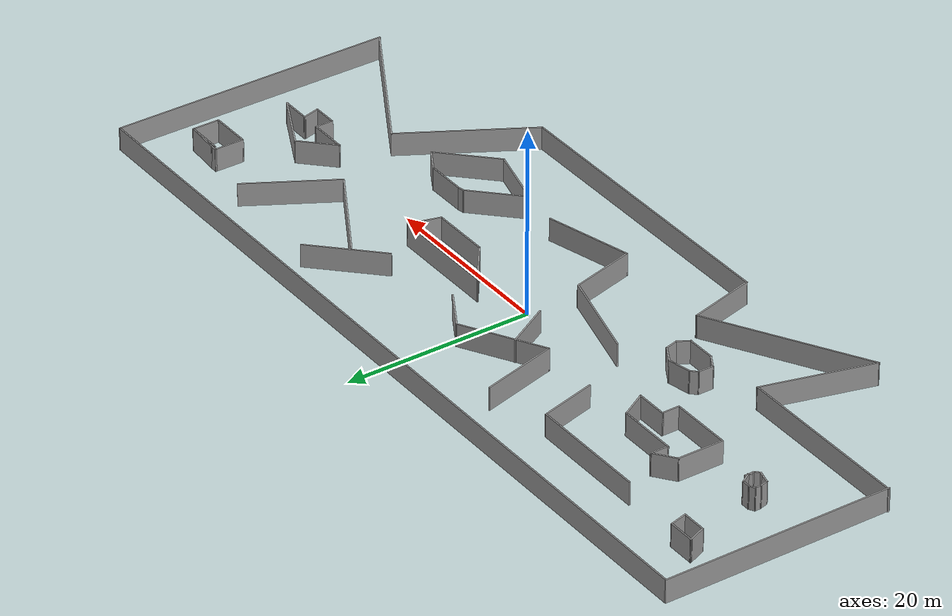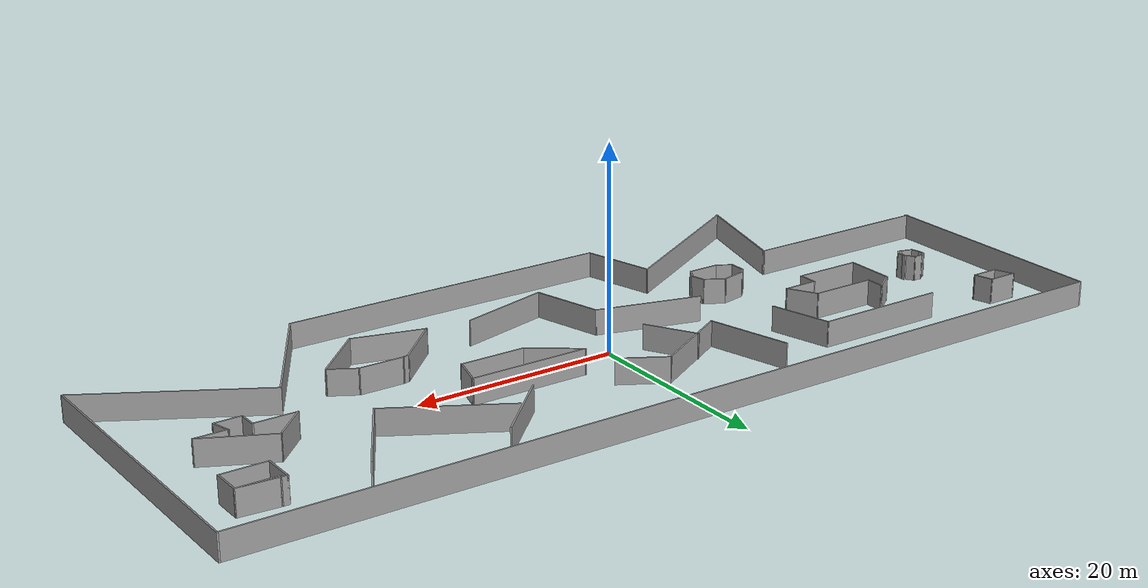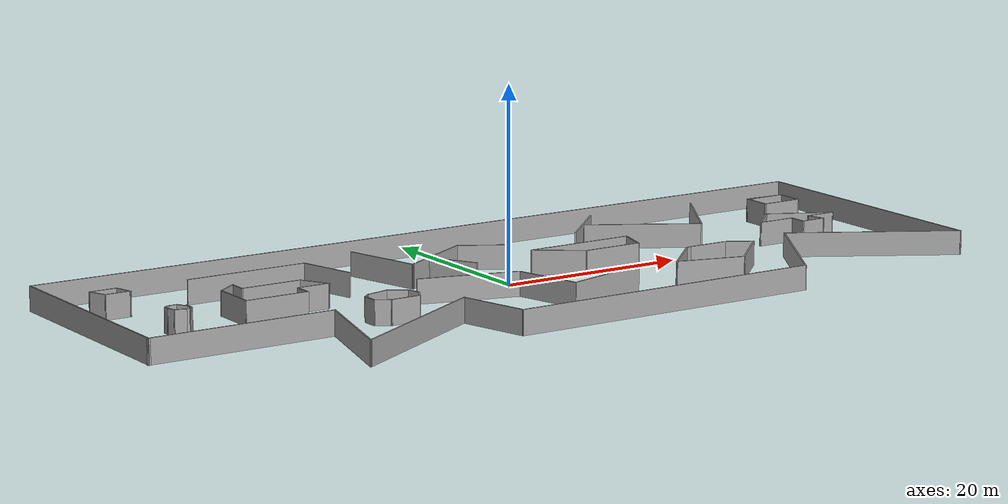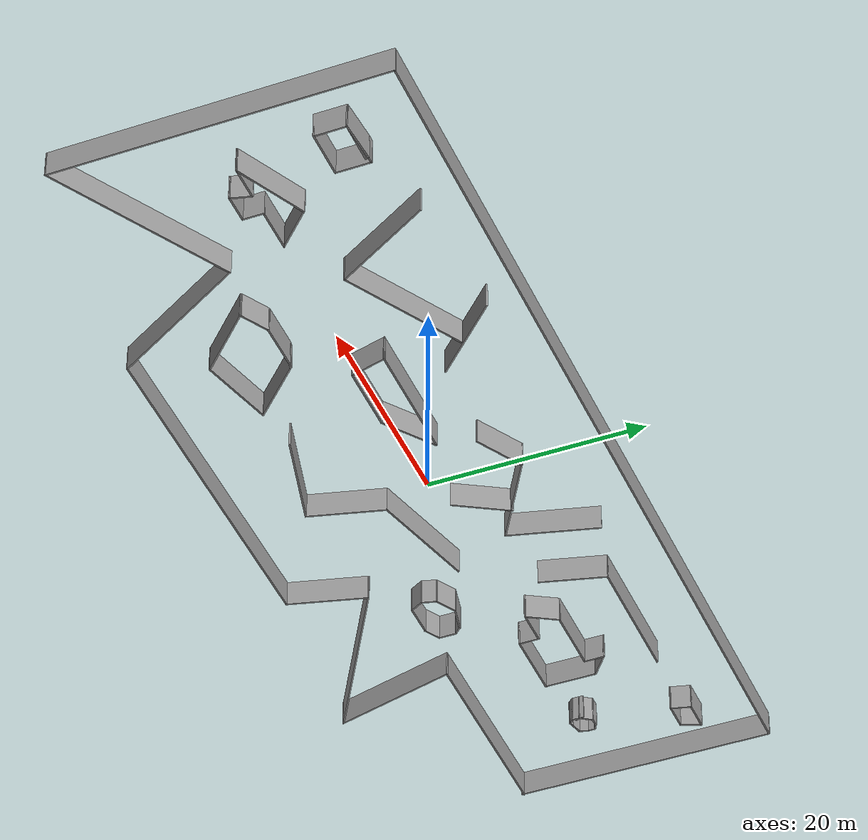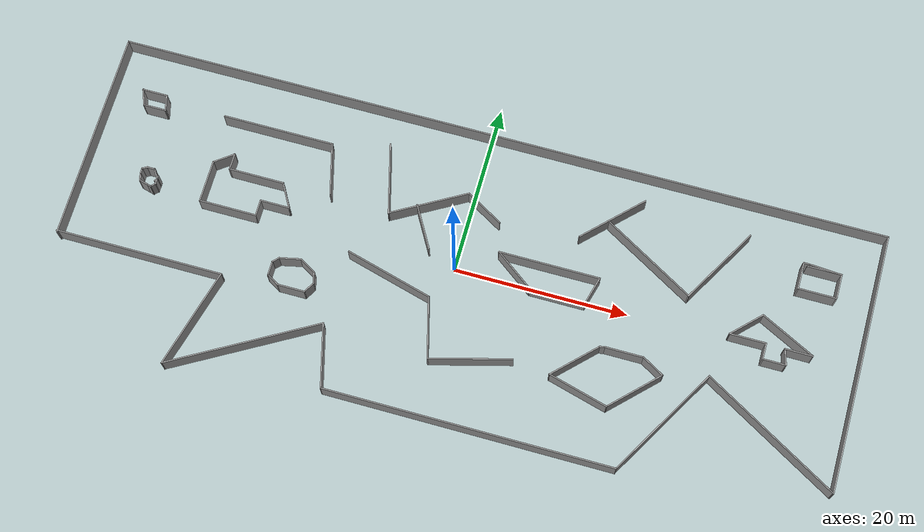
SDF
<?xml version='1.0'?>
<sdf version='1.7'>
  <model name='custommap2'>
    <pose>0.995293 -1.8674 0 0 -0 0</pose>
    <link name='Wall_0'>
      <collision name='Wall_0_Collision'>
        <geometry>
          <box>
            <size>24.5 0.15 2.5</size>
          </box>
        </geometry>
        <pose>0 0 1.25 0 -0 0</pose>
      </collision>
      <visual name='Wall_0_Visual'>
        <pose>0 0 1.25 0 -0 0</pose>
        <geometry>
          <box>
            <size>24.5 0.15 2.5</size>
          </box>
        </geometry>
        <material>
          <script>
            <uri>file://media/materials/scripts/gazebo.material</uri>
            <name>Gazebo/Grey</name>
          </script>
          <ambient>1 1 1 1</ambient>
        </material>
        <meta>
          <layer>0</layer>
        </meta>
      </visual>
      <pose>-44.896 5.66093 0 0 -0 1.5708</pose>
    </link>
    <link name='Wall_1'>
      <collision name='Wall_1_Collision'>
        <geometry>
          <box>
            <size>90 0.15 2.5</size>
          </box>
        </geometry>
        <pose>0 0 1.25 0 -0 0</pose>
      </collision>
      <visual name='Wall_1_Visual'>
        <pose>0 0 1.25 0 -0 0</pose>
        <geometry>
          <box>
            <size>90 0.15 2.5</size>
          </box>
        </geometry>
        <material>
          <script>
            <uri>file://media/materials/scripts/gazebo.material</uri>
            <name>Gazebo/Grey</name>
          </script>
          <ambient>1 1 1 1</ambient>
        </material>
        <meta>
          <layer>0</layer>
        </meta>
      </visual>
      <pose>0.02899 17.8359 0 0 -0 0</pose>
    </link>
    <link name='Wall_11'>
      <collision name='Wall_11_Collision'>
        <geometry>
          <box>
            <size>3 0.15 2.5</size>
          </box>
        </geometry>
        <pose>0 0 1.25 0 -0 0</pose>
      </collision>
      <visual name='Wall_11_Visual'>
        <pose>0 0 1.25 0 -0 0</pose>
        <geometry>
          <box>
            <size>3 0.15 2.5</size>
          </box>
        </geometry>
        <material>
          <script>
            <uri>file://media/materials/scripts/gazebo.material</uri>
            <name>Gazebo/Grey</name>
          </script>
          <ambient>1 1 1 1</ambient>
        </material>
        <meta>
          <layer>0</layer>
        </meta>
      </visual>
      <pose>-39.8624 12.5196 0 0 -0 0</pose>
    </link>
    <link name='Wall_12'>
      <collision name='Wall_12_Collision'>
        <geometry>
          <box>
            <size>2 0.15 2.5</size>
          </box>
        </geometry>
        <pose>0 0 1.25 0 -0 0</pose>
      </collision>
      <visual name='Wall_12_Visual'>
        <pose>0 0 1.25 0 -0 0</pose>
        <geometry>
          <box>
            <size>2 0.15 2.5</size>
          </box>
        </geometry>
        <material>
          <script>
            <uri>file://media/materials/scripts/gazebo.material</uri>
            <name>Gazebo/Grey</name>
          </script>
          <ambient>1 1 1 1</ambient>
        </material>
        <meta>
          <layer>0</layer>
        </meta>
      </visual>
      <pose>-38.198 11.6261 0 0 -0 -1.309</pose>
    </link>
    <link name='Wall_13'>
      <collision name='Wall_13_Collision'>
        <geometry>
          <box>
            <size>2.75 0.15 2.5</size>
          </box>
        </geometry>
        <pose>0 0 1.25 0 -0 0</pose>
      </collision>
      <visual name='Wall_13_Visual'>
        <pose>0 0 1.25 0 -0 0</pose>
        <geometry>
          <box>
            <size>2.75 0.15 2.5</size>
          </box>
        </geometry>
        <material>
          <script>
            <uri>file://media/materials/scripts/gazebo.material</uri>
            <name>Gazebo/Grey</name>
          </script>
          <ambient>1 1 1 1</ambient>
        </material>
        <meta>
          <layer>0</layer>
        </meta>
      </visual>
      <pose>-39.2586 10.7326 0 0 -0 3.14159</pose>
    </link>
    <link name='Wall_14'>
      <collision name='Wall_14_Collision'>
        <geometry>
          <box>
            <size>2.07987 0.15 2.5</size>
          </box>
        </geometry>
        <pose>0 0 1.25 0 -0 0</pose>
      </collision>
      <visual name='Wall_14_Visual'>
        <pose>0 0 1.25 0 -0 0</pose>
        <geometry>
          <box>
            <size>2.07987 0.15 2.5</size>
          </box>
        </geometry>
        <material>
          <script>
            <uri>file://media/materials/scripts/gazebo.material</uri>
            <name>Gazebo/Grey</name>
          </script>
          <ambient>1 1 1 1</ambient>
        </material>
        <meta>
          <layer>0</layer>
        </meta>
      </visual>
      <pose>-40.923 11.6261 0 0 -0 1.95805</pose>
    </link>
    <link name='Wall_16'>
      <collision name='Wall_16_Collision'>
        <geometry>
          <box>
            <size>5 0.15 2.5</size>
          </box>
        </geometry>
        <pose>0 0 1.25 0 -0 0</pose>
      </collision>
      <visual name='Wall_16_Visual'>
        <pose>0 0 1.25 0 -0 0</pose>
        <geometry>
          <box>
            <size>5 0.15 2.5</size>
          </box>
        </geometry>
        <material>
          <script>
            <uri>file://media/materials/scripts/gazebo.material</uri>
            <name>Gazebo/Grey</name>
          </script>
          <ambient>1 1 1 1</ambient>
        </material>
        <meta>
          <layer>0</layer>
        </meta>
      </visual>
      <pose>-30.6738 3.72645 0 0 -0 -1.5708</pose>
    </link>
    <link name='Wall_17'>
      <collision name='Wall_17_Collision'>
        <geometry>
          <box>
            <size>6.75 0.15 2.5</size>
          </box>
        </geometry>
        <pose>0 0 1.25 0 -0 0</pose>
      </collision>
      <visual name='Wall_17_Visual'>
        <pose>0 0 1.25 0 -0 0</pose>
        <geometry>
          <box>
            <size>6.75 0.15 2.5</size>
          </box>
        </geometry>
        <material>
          <script>
            <uri>file://media/materials/scripts/gazebo.material</uri>
            <name>Gazebo/Grey</name>
          </script>
          <ambient>1 1 1 1</ambient>
        </material>
        <meta>
          <layer>0</layer>
        </meta>
      </visual>
      <pose>-27.3738 1.30145 0 0 -0 0</pose>
    </link>
    <link name='Wall_18'>
      <collision name='Wall_18_Collision'>
        <geometry>
          <box>
            <size>2 0.15 2.5</size>
          </box>
        </geometry>
        <pose>0 0 1.25 0 -0 0</pose>
      </collision>
      <visual name='Wall_18_Visual'>
        <pose>0 0 1.25 0 -0 0</pose>
        <geometry>
          <box>
            <size>2 0.15 2.5</size>
          </box>
        </geometry>
        <material>
          <script>
            <uri>file://media/materials/scripts/gazebo.material</uri>
            <name>Gazebo/Grey</name>
          </script>
          <ambient>1 1 1 1</ambient>
        </material>
        <meta>
          <layer>0</layer>
        </meta>
      </visual>
      <pose>-24.0738 2.22645 0 0 -0 1.5708</pose>
    </link>
    <link name='Wall_19'>
      <collision name='Wall_19_Collision'>
        <geometry>
          <box>
            <size>3.5 0.15 2.5</size>
          </box>
        </geometry>
        <pose>0 0 1.25 0 -0 0</pose>
      </collision>
      <visual name='Wall_19_Visual'>
        <pose>0 0 1.25 0 -0 0</pose>
        <geometry>
          <box>
            <size>3.5 0.15 2.5</size>
          </box>
        </geometry>
        <material>
          <script>
            <uri>file://media/materials/scripts/gazebo.material</uri>
            <name>Gazebo/Grey</name>
          </script>
          <ambient>1 1 1 1</ambient>
        </material>
        <meta>
          <layer>0</layer>
        </meta>
      </visual>
      <pose>-22.3988 3.15145 0 0 -0 0</pose>
    </link>
    <link name='Wall_2'>
      <collision name='Wall_2_Collision'>
        <geometry>
          <box>
            <size>30.25 0.15 2.5</size>
          </box>
        </geometry>
        <pose>0 0 1.25 0 -0 0</pose>
      </collision>
      <visual name='Wall_2_Visual'>
        <pose>0 0 1.25 0 -0 0</pose>
        <geometry>
          <box>
            <size>30.25 0.15 2.5</size>
          </box>
        </geometry>
        <material>
          <script>
            <uri>file://media/materials/scripts/gazebo.material</uri>
            <name>Gazebo/Grey</name>
          </script>
          <ambient>1 1 1 1</ambient>
        </material>
        <meta>
          <layer>0</layer>
        </meta>
      </visual>
      <pose>44.954 2.78593 0 0 -0 -1.5708</pose>
    </link>
    <link name='Wall_20'>
      <collision name='Wall_20_Collision'>
        <geometry>
          <box>
            <size>3.25 0.15 2.5</size>
          </box>
        </geometry>
        <pose>0 0 1.25 0 -0 0</pose>
      </collision>
      <visual name='Wall_20_Visual'>
        <pose>0 0 1.25 0 -0 0</pose>
        <geometry>
          <box>
            <size>3.25 0.15 2.5</size>
          </box>
        </geometry>
        <material>
          <script>
            <uri>file://media/materials/scripts/gazebo.material</uri>
            <name>Gazebo/Grey</name>
          </script>
          <ambient>1 1 1 1</ambient>
        </material>
        <meta>
          <layer>0</layer>
        </meta>
      </visual>
      <pose>-21.4988 4.49379 0 0 -0 2.0944</pose>
    </link>
    <link name='Wall_21'>
      <collision name='Wall_21_Collision'>
        <geometry>
          <box>
            <size>6.5 0.15 2.5</size>
          </box>
        </geometry>
        <pose>0 0 1.25 0 -0 0</pose>
      </collision>
      <visual name='Wall_21_Visual'>
        <pose>0 0 1.25 0 -0 0</pose>
        <geometry>
          <box>
            <size>6.5 0.15 2.5</size>
          </box>
        </geometry>
        <material>
          <script>
            <uri>file://media/materials/scripts/gazebo.material</uri>
            <name>Gazebo/Grey</name>
          </script>
          <ambient>1 1 1 1</ambient>
        </material>
        <meta>
          <layer>0</layer>
        </meta>
      </visual>
      <pose>-25.4488 5.83613 0 0 -0 3.14159</pose>
    </link>
    <link name='Wall_22'>
      <collision name='Wall_22_Collision'>
        <geometry>
          <box>
            <size>2 0.15 2.5</size>
          </box>
        </geometry>
        <pose>0 0 1.25 0 -0 0</pose>
      </collision>
      <visual name='Wall_22_Visual'>
        <pose>0 0 1.25 0 -0 0</pose>
        <geometry>
          <box>
            <size>2 0.15 2.5</size>
          </box>
        </geometry>
        <material>
          <script>
            <uri>file://media/materials/scripts/gazebo.material</uri>
            <name>Gazebo/Grey</name>
          </script>
          <ambient>1 1 1 1</ambient>
        </material>
        <meta>
          <layer>0</layer>
        </meta>
      </visual>
      <pose>-28.6238 6.76112 0 0 -0 1.5708</pose>
    </link>
    <link name='Wall_23'>
      <collision name='Wall_23_Collision'>
        <geometry>
          <box>
            <size>2.71081 0.15 2.5</size>
          </box>
        </geometry>
        <pose>0 0 1.25 0 -0 0</pose>
      </collision>
      <visual name='Wall_23_Visual'>
        <pose>0 0 1.25 0 -0 0</pose>
        <geometry>
          <box>
            <size>2.71081 0.15 2.5</size>
          </box>
        </geometry>
        <material>
          <script>
            <uri>file://media/materials/scripts/gazebo.material</uri>
            <name>Gazebo/Grey</name>
          </script>
          <ambient>1 1 1 1</ambient>
        </material>
        <meta>
          <layer>0</layer>
        </meta>
      </visual>
      <pose>-29.6488 6.91879 0 0 -0 -2.49897</pose>
    </link>
    <link name='Wall_25'>
      <collision name='Wall_25_Collision'>
        <geometry>
          <box>
            <size>13 0.15 2.5</size>
          </box>
        </geometry>
        <pose>0 0 1.25 0 -0 0</pose>
      </collision>
      <visual name='Wall_25_Visual'>
        <pose>0 0 1.25 0 -0 0</pose>
        <geometry>
          <box>
            <size>13 0.15 2.5</size>
          </box>
        </geometry>
        <material>
          <script>
            <uri>file://media/materials/scripts/gazebo.material</uri>
            <name>Gazebo/Grey</name>
          </script>
          <ambient>1 1 1 1</ambient>
        </material>
        <meta>
          <layer>0</layer>
        </meta>
      </visual>
      <pose>-24.7441 11.8828 0 0 -0 0</pose>
    </link>
    <link name='Wall_26'>
      <collision name='Wall_26_Collision'>
        <geometry>
          <box>
            <size>6.25 0.15 2.5</size>
          </box>
        </geometry>
        <pose>0 0 1.25 0 -0 0</pose>
      </collision>
      <visual name='Wall_26_Visual'>
        <pose>0 0 1.25 0 -0 0</pose>
        <geometry>
          <box>
            <size>6.25 0.15 2.5</size>
          </box>
        </geometry>
        <material>
          <script>
            <uri>file://media/materials/scripts/gazebo.material</uri>
            <name>Gazebo/Grey</name>
          </script>
          <ambient>1 1 1 1</ambient>
        </material>
        <meta>
          <layer>0</layer>
        </meta>
      </visual>
      <pose>-17.5297 8.9367 0 0 -0 -1.309</pose>
    </link>
    <link name='Wall_28'>
      <collision name='Wall_28_Collision'>
        <geometry>
          <box>
            <size>1 0.15 2.5</size>
          </box>
        </geometry>
        <pose>0 0 1.25 0 -0 0</pose>
      </collision>
      <visual name='Wall_28_Visual'>
        <pose>0 0 1.25 0 -0 0</pose>
        <geometry>
          <box>
            <size>1 0.15 2.5</size>
          </box>
        </geometry>
        <material>
          <script>
            <uri>file://media/materials/scripts/gazebo.material</uri>
            <name>Gazebo/Grey</name>
          </script>
          <ambient>1 1 1 1</ambient>
        </material>
        <meta>
          <layer>0</layer>
        </meta>
      </visual>
      <pose>-20.29 -3.13522 0 0 -0 -2.35619</pose>
    </link>
    <link name='Wall_29'>
      <collision name='Wall_29_Collision'>
        <geometry>
          <box>
            <size>1.75 0.15 2.5</size>
          </box>
        </geometry>
        <pose>0 0 1.25 0 -0 0</pose>
      </collision>
      <visual name='Wall_29_Visual'>
        <pose>0 0 1.25 0 -0 0</pose>
        <geometry>
          <box>
            <size>1.75 0.15 2.5</size>
          </box>
        </geometry>
        <material>
          <script>
            <uri>file://media/materials/scripts/gazebo.material</uri>
            <name>Gazebo/Grey</name>
          </script>
          <ambient>1 1 1 1</ambient>
        </material>
        <meta>
          <layer>0</layer>
        </meta>
      </visual>
      <pose>-20.5906 -4.23574 0 0 -0 -1.5708</pose>
    </link>
    <link name='Wall_3'>
      <collision name='Wall_3_Collision'>
        <geometry>
          <box>
            <size>18.25 0.15 2.5</size>
          </box>
        </geometry>
        <pose>0 0 1.25 0 -0 0</pose>
      </collision>
      <visual name='Wall_3_Visual'>
        <pose>0 0 1.25 0 -0 0</pose>
        <geometry>
          <box>
            <size>18.25 0.15 2.5</size>
          </box>
        </geometry>
        <material>
          <script>
            <uri>file://media/materials/scripts/gazebo.material</uri>
            <name>Gazebo/Grey</name>
          </script>
          <ambient>1 1 1 1</ambient>
        </material>
        <meta>
          <layer>0</layer>
        </meta>
      </visual>
      <pose>37.1165 -7.73907 0 0 -0 2.61799</pose>
    </link>
    <link name='Wall_30'>
      <collision name='Wall_30_Collision'>
        <geometry>
          <box>
            <size>1.75 0.15 2.5</size>
          </box>
        </geometry>
        <pose>0 0 1.25 0 -0 0</pose>
      </collision>
      <visual name='Wall_30_Visual'>
        <pose>0 0 1.25 0 -0 0</pose>
        <geometry>
          <box>
            <size>1.75 0.15 2.5</size>
          </box>
        </geometry>
        <material>
          <script>
            <uri>file://media/materials/scripts/gazebo.material</uri>
            <name>Gazebo/Grey</name>
          </script>
          <ambient>1 1 1 1</ambient>
        </material>
        <meta>
          <layer>0</layer>
        </meta>
      </visual>
      <pose>-19.8977 -5.43574 0 0 -0 -0.523599</pose>
    </link>
    <link name='Wall_31'>
      <collision name='Wall_31_Collision'>
        <geometry>
          <box>
            <size>3.25 0.15 2.5</size>
          </box>
        </geometry>
        <pose>0 0 1.25 0 -0 0</pose>
      </collision>
      <visual name='Wall_31_Visual'>
        <pose>0 0 1.25 0 -0 0</pose>
        <geometry>
          <box>
            <size>3.25 0.15 2.5</size>
          </box>
        </geometry>
        <material>
          <script>
            <uri>file://media/materials/scripts/gazebo.material</uri>
            <name>Gazebo/Grey</name>
          </script>
          <ambient>1 1 1 1</ambient>
        </material>
        <meta>
          <layer>0</layer>
        </meta>
      </visual>
      <pose>-17.6549 -5.83574 0 0 -0 0</pose>
    </link>
    <link name='Wall_32'>
      <collision name='Wall_32_Collision'>
        <geometry>
          <box>
            <size>1.5 0.15 2.5</size>
          </box>
        </geometry>
        <pose>0 0 1.25 0 -0 0</pose>
      </collision>
      <visual name='Wall_32_Visual'>
        <pose>0 0 1.25 0 -0 0</pose>
        <geometry>
          <box>
            <size>1.5 0.15 2.5</size>
          </box>
        </geometry>
        <material>
          <script>
            <uri>file://media/materials/scripts/gazebo.material</uri>
            <name>Gazebo/Grey</name>
          </script>
          <ambient>1 1 1 1</ambient>
        </material>
        <meta>
          <layer>0</layer>
        </meta>
      </visual>
      <pose>-15.7674 -5.25117 0 0 -0 1.0472</pose>
    </link>
    <link name='Wall_33'>
      <collision name='Wall_33_Collision'>
        <geometry>
          <box>
            <size>1.5 0.15 2.5</size>
          </box>
        </geometry>
        <pose>0 0 1.25 0 -0 0</pose>
      </collision>
      <visual name='Wall_33_Visual'>
        <pose>0 0 1.25 0 -0 0</pose>
        <geometry>
          <box>
            <size>1.5 0.15 2.5</size>
          </box>
        </geometry>
        <material>
          <script>
            <uri>file://media/materials/scripts/gazebo.material</uri>
            <name>Gazebo/Grey</name>
          </script>
          <ambient>1 1 1 1</ambient>
        </material>
        <meta>
          <layer>0</layer>
        </meta>
      </visual>
      <pose>-15.6046 -4.01461 0 0 -0 1.8326</pose>
    </link>
    <link name='Wall_34'>
      <collision name='Wall_34_Collision'>
        <geometry>
          <box>
            <size>2.25 0.15 2.5</size>
          </box>
        </geometry>
        <pose>0 0 1.25 0 -0 0</pose>
      </collision>
      <visual name='Wall_34_Visual'>
        <pose>0 0 1.25 0 -0 0</pose>
        <geometry>
          <box>
            <size>2.25 0.15 2.5</size>
          </box>
        </geometry>
        <material>
          <script>
            <uri>file://media/materials/scripts/gazebo.material</uri>
            <name>Gazebo/Grey</name>
          </script>
          <ambient>1 1 1 1</ambient>
        </material>
        <meta>
          <layer>0</layer>
        </meta>
      </visual>
      <pose>-16.6887 -2.83761 0 0 -0 2.61799</pose>
    </link>
    <link name='Wall_35'>
      <collision name='Wall_35_Collision'>
        <geometry>
          <box>
            <size>2.59787 0.15 2.5</size>
          </box>
        </geometry>
        <pose>0 0 1.25 0 -0 0</pose>
      </collision>
      <visual name='Wall_35_Visual'>
        <pose>0 0 1.25 0 -0 0</pose>
        <geometry>
          <box>
            <size>2.59787 0.15 2.5</size>
          </box>
        </geometry>
        <material>
          <script>
            <uri>file://media/materials/scripts/gazebo.material</uri>
            <name>Gazebo/Grey</name>
          </script>
          <ambient>1 1 1 1</ambient>
        </material>
        <meta>
          <layer>0</layer>
        </meta>
      </visual>
      <pose>-18.7938 -2.57365 0 0 -0 -2.92666</pose>
    </link>
    <link name='Wall_37'>
      <collision name='Wall_37_Collision'>
        <geometry>
          <box>
            <size>10.5 0.15 2.5</size>
          </box>
        </geometry>
        <pose>0 0 1.25 0 -0 0</pose>
      </collision>
      <visual name='Wall_37_Visual'>
        <pose>0 0 1.25 0 -0 0</pose>
        <geometry>
          <box>
            <size>10.5 0.15 2.5</size>
          </box>
        </geometry>
        <material>
          <script>
            <uri>file://media/materials/scripts/gazebo.material</uri>
            <name>Gazebo/Grey</name>
          </script>
          <ambient>1 1 1 1</ambient>
        </material>
        <meta>
          <layer>0</layer>
        </meta>
      </visual>
      <pose>-7.70288 -1.34381 0 0 -0 -0.261799</pose>
    </link>
    <link name='Wall_38'>
      <collision name='Wall_38_Collision'>
        <geometry>
          <box>
            <size>7.25 0.15 2.5</size>
          </box>
        </geometry>
        <pose>0 0 1.25 0 -0 0</pose>
      </collision>
      <visual name='Wall_38_Visual'>
        <pose>0 0 1.25 0 -0 0</pose>
        <geometry>
          <box>
            <size>7.25 0.15 2.5</size>
          </box>
        </geometry>
        <material>
          <script>
            <uri>file://media/materials/scripts/gazebo.material</uri>
            <name>Gazebo/Grey</name>
          </script>
          <ambient>1 1 1 1</ambient>
        </material>
        <meta>
          <layer>0</layer>
        </meta>
      </visual>
      <pose>-1.78541 -6.11223 0 0 -0 -1.309</pose>
    </link>
    <link name='Wall_39'>
      <collision name='Wall_39_Collision'>
        <geometry>
          <box>
            <size>9.5 0.15 2.5</size>
          </box>
        </geometry>
        <pose>0 0 1.25 0 -0 0</pose>
      </collision>
      <visual name='Wall_39_Visual'>
        <pose>0 0 1.25 0 -0 0</pose>
        <geometry>
          <box>
            <size>9.5 0.15 2.5</size>
          </box>
        </geometry>
        <material>
          <script>
            <uri>file://media/materials/scripts/gazebo.material</uri>
            <name>Gazebo/Grey</name>
          </script>
          <ambient>1 1 1 1</ambient>
        </material>
        <meta>
          <layer>0</layer>
        </meta>
      </visual>
      <pose>3.6491 -8.33129 0 0 -0 0.261799</pose>
    </link>
    <link name='Wall_4'>
      <collision name='Wall_4_Collision'>
        <geometry>
          <box>
            <size>14.75 0.15 2.5</size>
          </box>
        </geometry>
        <pose>0 0 1.25 0 -0 0</pose>
      </collision>
      <visual name='Wall_4_Visual'>
        <pose>0 0 1.25 0 -0 0</pose>
        <geometry>
          <box>
            <size>14.75 0.15 2.5</size>
          </box>
        </geometry>
        <material>
          <script>
            <uri>file://media/materials/scripts/gazebo.material</uri>
            <name>Gazebo/Grey</name>
          </script>
          <ambient>1 1 1 1</ambient>
        </material>
        <meta>
          <layer>0</layer>
        </meta>
      </visual>
      <pose>25.6289 -9.53605 0 0 -0 -2.0944</pose>
    </link>
    <link name='Wall_41'>
      <collision name='Wall_41_Collision'>
        <geometry>
          <box>
            <size>8.5 0.15 2.5</size>
          </box>
        </geometry>
        <pose>0 0 1.25 0 -0 0</pose>
      </collision>
      <visual name='Wall_41_Visual'>
        <pose>0 0 1.25 0 -0 0</pose>
        <geometry>
          <box>
            <size>8.5 0.15 2.5</size>
          </box>
        </geometry>
        <material>
          <script>
            <uri>file://media/materials/scripts/gazebo.material</uri>
            <name>Gazebo/Grey</name>
          </script>
          <ambient>1 1 1 1</ambient>
        </material>
        <meta>
          <layer>0</layer>
        </meta>
      </visual>
      <pose>-10.8427 9.61895 0 0 -0 -1.309</pose>
    </link>
    <link name='Wall_42'>
      <collision name='Wall_42_Collision'>
        <geometry>
          <box>
            <size>9.5 0.15 2.5</size>
          </box>
        </geometry>
        <pose>0 0 1.25 0 -0 0</pose>
      </collision>
      <visual name='Wall_42_Visual'>
        <pose>0 0 1.25 0 -0 0</pose>
        <geometry>
          <box>
            <size>9.5 0.15 2.5</size>
          </box>
        </geometry>
        <material>
          <script>
            <uri>file://media/materials/scripts/gazebo.material</uri>
            <name>Gazebo/Grey</name>
          </script>
          <ambient>1 1 1 1</ambient>
        </material>
        <meta>
          <layer>0</layer>
        </meta>
      </visual>
      <pose>-5.71341 7.92371 0 0 -0 0.523599</pose>
    </link>
    <link name='Wall_44'>
      <collision name='Wall_44_Collision'>
        <geometry>
          <box>
            <size>0.75 0.15 2.5</size>
          </box>
        </geometry>
        <pose>0 0 1.25 0 -0 0</pose>
      </collision>
      <visual name='Wall_44_Visual'>
        <pose>0 0 1.25 0 -0 0</pose>
        <geometry>
          <box>
            <size>0.75 0.15 2.5</size>
          </box>
        </geometry>
        <material>
          <script>
            <uri>file://media/materials/scripts/gazebo.material</uri>
            <name>Gazebo/Grey</name>
          </script>
          <ambient>1 1 1 1</ambient>
        </material>
        <meta>
          <layer>0</layer>
        </meta>
      </visual>
      <pose>-37.9386 3.38343 0 0 -0 -2.61799</pose>
    </link>
    <link name='Wall_45'>
      <collision name='Wall_45_Collision'>
        <geometry>
          <box>
            <size>0.75 0.15 2.5</size>
          </box>
        </geometry>
        <pose>0 0 1.25 0 -0 0</pose>
      </collision>
      <visual name='Wall_45_Visual'>
        <pose>0 0 1.25 0 -0 0</pose>
        <geometry>
          <box>
            <size>0.75 0.15 2.5</size>
          </box>
        </geometry>
        <material>
          <script>
            <uri>file://media/materials/scripts/gazebo.material</uri>
            <name>Gazebo/Grey</name>
          </script>
          <ambient>1 1 1 1</ambient>
        </material>
        <meta>
          <layer>0</layer>
        </meta>
      </visual>
      <pose>-38.1984 2.93343 0 0 -0 -1.5708</pose>
    </link>
    <link name='Wall_46'>
      <collision name='Wall_46_Collision'>
        <geometry>
          <box>
            <size>1 0.15 2.5</size>
          </box>
        </geometry>
        <pose>0 0 1.25 0 -0 0</pose>
      </collision>
      <visual name='Wall_46_Visual'>
        <pose>0 0 1.25 0 -0 0</pose>
        <geometry>
          <box>
            <size>1 0.15 2.5</size>
          </box>
        </geometry>
        <material>
          <script>
            <uri>file://media/materials/scripts/gazebo.material</uri>
            <name>Gazebo/Grey</name>
          </script>
          <ambient>1 1 1 1</ambient>
        </material>
        <meta>
          <layer>0</layer>
        </meta>
      </visual>
      <pose>-38.0884 2.22292 0 0 -0 -1.309</pose>
    </link>
    <link name='Wall_47'>
      <collision name='Wall_47_Collision'>
        <geometry>
          <box>
            <size>1.25 0.15 2.5</size>
          </box>
        </geometry>
        <pose>0 0 1.25 0 -0 0</pose>
      </collision>
      <visual name='Wall_47_Visual'>
        <pose>0 0 1.25 0 -0 0</pose>
        <geometry>
          <box>
            <size>1.25 0.15 2.5</size>
          </box>
        </geometry>
        <material>
          <script>
            <uri>file://media/materials/scripts/gazebo.material</uri>
            <name>Gazebo/Grey</name>
          </script>
          <ambient>1 1 1 1</ambient>
        </material>
        <meta>
          <layer>0</layer>
        </meta>
      </visual>
      <pose>-37.4472 1.67005 0 0 -0 -0.261799</pose>
    </link>
    <link name='Wall_48'>
      <collision name='Wall_48_Collision'>
        <geometry>
          <box>
            <size>0.5 0.15 2.5</size>
          </box>
        </geometry>
        <pose>0 0 1.25 0 -0 0</pose>
      </collision>
      <visual name='Wall_48_Visual'>
        <pose>0 0 1.25 0 -0 0</pose>
        <geometry>
          <box>
            <size>0.5 0.15 2.5</size>
          </box>
        </geometry>
        <material>
          <script>
            <uri>file://media/materials/scripts/gazebo.material</uri>
            <name>Gazebo/Grey</name>
          </script>
          <ambient>1 1 1 1</ambient>
        </material>
        <meta>
          <layer>0</layer>
        </meta>
      </visual>
      <pose>-36.7469 1.4824 0 0 -0 -0.261799</pose>
    </link>
    <link name='Wall_49'>
      <collision name='Wall_49_Collision'>
        <geometry>
          <box>
            <size>0.75 0.15 2.5</size>
          </box>
        </geometry>
        <pose>0 0 1.25 0 -0 0</pose>
      </collision>
      <visual name='Wall_49_Visual'>
        <pose>0 0 1.25 0 -0 0</pose>
        <geometry>
          <box>
            <size>0.75 0.15 2.5</size>
          </box>
        </geometry>
        <material>
          <script>
            <uri>file://media/materials/scripts/gazebo.material</uri>
            <name>Gazebo/Grey</name>
          </script>
          <ambient>1 1 1 1</ambient>
        </material>
        <meta>
          <layer>0</layer>
        </meta>
      </visual>
      <pose>-36.3657 1.64924 0 0 -0 0.785398</pose>
    </link>
    <link name='Wall_5'>
      <collision name='Wall_5_Collision'>
        <geometry>
          <box>
            <size>33.25 0.15 2.5</size>
          </box>
        </geometry>
        <pose>0 0 1.25 0 -0 0</pose>
      </collision>
      <visual name='Wall_5_Visual'>
        <pose>0 0 1.25 0 -0 0</pose>
        <geometry>
          <box>
            <size>33.25 0.15 2.5</size>
          </box>
        </geometry>
        <material>
          <script>
            <uri>file://media/materials/scripts/gazebo.material</uri>
            <name>Gazebo/Grey</name>
          </script>
          <ambient>1 1 1 1</ambient>
        </material>
        <meta>
          <layer>0</layer>
        </meta>
      </visual>
      <pose>5.42893 -15.858 0 0 -0 3.14159</pose>
    </link>
    <link name='Wall_51'>
      <collision name='Wall_51_Collision'>
        <geometry>
          <box>
            <size>0.5 0.15 2.5</size>
          </box>
        </geometry>
        <pose>0 0 1.25 0 -0 0</pose>
      </collision>
      <visual name='Wall_51_Visual'>
        <pose>0 0 1.25 0 -0 0</pose>
        <geometry>
          <box>
            <size>0.5 0.15 2.5</size>
          </box>
        </geometry>
        <material>
          <script>
            <uri>file://media/materials/scripts/gazebo.material</uri>
            <name>Gazebo/Grey</name>
          </script>
          <ambient>1 1 1 1</ambient>
        </material>
        <meta>
          <layer>0</layer>
        </meta>
      </visual>
      <pose>-36.2469 2.34061 0 0 -0 1.0472</pose>
    </link>
    <link name='Wall_52'>
      <collision name='Wall_52_Collision'>
        <geometry>
          <box>
            <size>0.5 0.15 2.5</size>
          </box>
        </geometry>
        <pose>0 0 1.25 0 -0 0</pose>
      </collision>
      <visual name='Wall_52_Visual'>
        <pose>0 0 1.25 0 -0 0</pose>
        <geometry>
          <box>
            <size>0.5 0.15 2.5</size>
          </box>
        </geometry>
        <material>
          <script>
            <uri>file://media/materials/scripts/gazebo.material</uri>
            <name>Gazebo/Grey</name>
          </script>
          <ambient>1 1 1 1</ambient>
        </material>
        <meta>
          <layer>0</layer>
        </meta>
      </visual>
      <pose>-36.1594 2.66716 0 0 -0 1.5708</pose>
    </link>
    <link name='Wall_54'>
      <collision name='Wall_54_Collision'>
        <geometry>
          <box>
            <size>1 0.15 2.5</size>
          </box>
        </geometry>
        <pose>0 0 1.25 0 -0 0</pose>
      </collision>
      <visual name='Wall_54_Visual'>
        <pose>0 0 1.25 0 -0 0</pose>
        <geometry>
          <box>
            <size>1 0.15 2.5</size>
          </box>
        </geometry>
        <material>
          <script>
            <uri>file://media/materials/scripts/gazebo.material</uri>
            <name>Gazebo/Grey</name>
          </script>
          <ambient>1 1 1 1</ambient>
        </material>
        <meta>
          <layer>0</layer>
        </meta>
      </visual>
      <pose>-37.2538 3.53343 0 0 -0 0</pose>
    </link>
    <link name='Wall_55'>
      <collision name='Wall_55_Collision'>
        <geometry>
          <box>
            <size>1.38787 0.15 2.5</size>
          </box>
        </geometry>
        <pose>0 0 1.25 0 -0 0</pose>
      </collision>
      <visual name='Wall_55_Visual'>
        <pose>0 0 1.25 0 -0 0</pose>
        <geometry>
          <box>
            <size>1.38787 0.15 2.5</size>
          </box>
        </geometry>
        <material>
          <script>
            <uri>file://media/materials/scripts/gazebo.material</uri>
            <name>Gazebo/Grey</name>
          </script>
          <ambient>1 1 1 1</ambient>
        </material>
        <meta>
          <layer>0</layer>
        </meta>
      </visual>
      <pose>-36.4941 3.0128 0 0 -0 -0.999464</pose>
    </link>
    <link name='Wall_56'>
      <collision name='Wall_56_Collision'>
        <geometry>
          <box>
            <size>0.780812 0.15 2.5</size>
          </box>
        </geometry>
        <pose>0 0 1.25 0 -0 0</pose>
      </collision>
      <visual name='Wall_56_Visual'>
        <pose>0 0 1.25 0 -0 0</pose>
        <geometry>
          <box>
            <size>0.780812 0.15 2.5</size>
          </box>
        </geometry>
        <material>
          <script>
            <uri>file://media/materials/scripts/gazebo.material</uri>
            <name>Gazebo/Grey</name>
          </script>
          <ambient>1 1 1 1</ambient>
        </material>
        <meta>
          <layer>0</layer>
        </meta>
      </visual>
      <pose>-36.1565 2.17677 0 0 -0 -1.56152</pose>
    </link>
    <link name='Wall_58'>
      <collision name='Wall_58_Collision'>
        <geometry>
          <box>
            <size>11.75 0.15 2.5</size>
          </box>
        </geometry>
        <pose>0 0 1.25 0 -0 0</pose>
      </collision>
      <visual name='Wall_58_Visual'>
        <pose>0 0 1.25 0 -0 0</pose>
        <geometry>
          <box>
            <size>11.75 0.15 2.5</size>
          </box>
        </geometry>
        <material>
          <script>
            <uri>file://media/materials/scripts/gazebo.material</uri>
            <name>Gazebo/Grey</name>
          </script>
          <ambient>1 1 1 1</ambient>
        </material>
        <meta>
          <layer>0</layer>
        </meta>
      </visual>
      <pose>9.23106 4.45328 0 0 -0 0</pose>
    </link>
    <link name='Wall_59'>
      <collision name='Wall_59_Collision'>
        <geometry>
          <box>
            <size>3.5 0.15 2.5</size>
          </box>
        </geometry>
        <pose>0 0 1.25 0 -0 0</pose>
      </collision>
      <visual name='Wall_59_Visual'>
        <pose>0 0 1.25 0 -0 0</pose>
        <geometry>
          <box>
            <size>3.5 0.15 2.5</size>
          </box>
        </geometry>
        <material>
          <script>
            <uri>file://media/materials/scripts/gazebo.material</uri>
            <name>Gazebo/Grey</name>
          </script>
          <ambient>1 1 1 1</ambient>
        </material>
        <meta>
          <layer>0</layer>
        </meta>
      </visual>
      <pose>14.5975 2.83535 0 0 -0 -1.8326</pose>
    </link>
    <link name='Wall_6'>
      <collision name='Wall_6_Collision'>
        <geometry>
          <box>
            <size>7.5 0.15 2.5</size>
          </box>
        </geometry>
        <pose>0 0 1.25 0 -0 0</pose>
      </collision>
      <visual name='Wall_6_Visual'>
        <pose>0 0 1.25 0 -0 0</pose>
        <geometry>
          <box>
            <size>7.5 0.15 2.5</size>
          </box>
        </geometry>
        <material>
          <script>
            <uri>file://media/materials/scripts/gazebo.material</uri>
            <name>Gazebo/Grey</name>
          </script>
          <ambient>1 1 1 1</ambient>
        </material>
        <meta>
          <layer>0</layer>
        </meta>
      </visual>
      <pose>-12.0722 -12.3083 0 0 -0 1.8326</pose>
    </link>
    <link name='Wall_60'>
      <collision name='Wall_60_Collision'>
        <geometry>
          <box>
            <size>6.5 0.15 2.5</size>
          </box>
        </geometry>
        <pose>0 0 1.25 0 -0 0</pose>
      </collision>
      <visual name='Wall_60_Visual'>
        <pose>0 0 1.25 0 -0 0</pose>
        <geometry>
          <box>
            <size>6.5 0.15 2.5</size>
          </box>
        </geometry>
        <material>
          <script>
            <uri>file://media/materials/scripts/gazebo.material</uri>
            <name>Gazebo/Grey</name>
          </script>
          <ambient>1 1 1 1</ambient>
        </material>
        <meta>
          <layer>0</layer>
        </meta>
      </visual>
      <pose>10.989 1.21743 0 0 -0 3.14159</pose>
    </link>
    <link name='Wall_61'>
      <collision name='Wall_61_Collision'>
        <geometry>
          <box>
            <size>5.59803 0.15 2.5</size>
          </box>
        </geometry>
        <pose>0 0 1.25 0 -0 0</pose>
      </collision>
      <visual name='Wall_61_Visual'>
        <pose>0 0 1.25 0 -0 0</pose>
        <geometry>
          <box>
            <size>5.59803 0.15 2.5</size>
          </box>
        </geometry>
        <material>
          <script>
            <uri>file://media/materials/scripts/gazebo.material</uri>
            <name>Gazebo/Grey</name>
          </script>
          <ambient>1 1 1 1</ambient>
        </material>
        <meta>
          <layer>0</layer>
        </meta>
      </visual>
      <pose>5.62254 2.83535 0 0 -0 2.50563</pose>
    </link>
    <link name='Wall_63'>
      <collision name='Wall_63_Collision'>
        <geometry>
          <box>
            <size>6.5 0.15 2.5</size>
          </box>
        </geometry>
        <pose>0 0 1.25 0 -0 0</pose>
      </collision>
      <visual name='Wall_63_Visual'>
        <pose>0 0 1.25 0 -0 0</pose>
        <geometry>
          <box>
            <size>6.5 0.15 2.5</size>
          </box>
        </geometry>
        <material>
          <script>
            <uri>file://media/materials/scripts/gazebo.material</uri>
            <name>Gazebo/Grey</name>
          </script>
          <ambient>1 1 1 1</ambient>
        </material>
        <meta>
          <layer>0</layer>
        </meta>
      </visual>
      <pose>14.7006 -5.43355 0 0 -0 -2.35619</pose>
    </link>
    <link name='Wall_64'>
      <collision name='Wall_64_Collision'>
        <geometry>
          <box>
            <size>7.25 0.15 2.5</size>
          </box>
        </geometry>
        <pose>0 0 1.25 0 -0 0</pose>
      </collision>
      <visual name='Wall_64_Visual'>
        <pose>0 0 1.25 0 -0 0</pose>
        <geometry>
          <box>
            <size>7.25 0.15 2.5</size>
          </box>
        </geometry>
        <material>
          <script>
            <uri>file://media/materials/scripts/gazebo.material</uri>
            <name>Gazebo/Grey</name>
          </script>
          <ambient>1 1 1 1</ambient>
        </material>
        <meta>
          <layer>0</layer>
        </meta>
      </visual>
      <pose>15.8846 -8.59742 0 0 -0 -0.261799</pose>
    </link>
    <link name='Wall_65'>
      <collision name='Wall_65_Collision'>
        <geometry>
          <box>
            <size>7.25 0.15 2.5</size>
          </box>
        </geometry>
        <pose>0 0 1.25 0 -0 0</pose>
      </collision>
      <visual name='Wall_65_Visual'>
        <pose>0 0 1.25 0 -0 0</pose>
        <geometry>
          <box>
            <size>7.25 0.15 2.5</size>
          </box>
        </geometry>
        <material>
          <script>
            <uri>file://media/materials/scripts/gazebo.material</uri>
            <name>Gazebo/Grey</name>
          </script>
          <ambient>1 1 1 1</ambient>
        </material>
        <meta>
          <layer>0</layer>
        </meta>
      </visual>
      <pose>21.8238 -7.006 0 0 -0 0.785398</pose>
    </link>
    <link name='Wall_66'>
      <collision name='Wall_66_Collision'>
        <geometry>
          <box>
            <size>3 0.15 2.5</size>
          </box>
        </geometry>
        <pose>0 0 1.25 0 -0 0</pose>
      </collision>
      <visual name='Wall_66_Visual'>
        <pose>0 0 1.25 0 -0 0</pose>
        <geometry>
          <box>
            <size>3 0.15 2.5</size>
          </box>
        </geometry>
        <material>
          <script>
            <uri>file://media/materials/scripts/gazebo.material</uri>
            <name>Gazebo/Grey</name>
          </script>
          <ambient>1 1 1 1</ambient>
        </material>
        <meta>
          <layer>0</layer>
        </meta>
      </visual>
      <pose>23.1 -3.78327 0 0 -0 2.61799</pose>
    </link>
    <link name='Wall_67'>
      <collision name='Wall_67_Collision'>
        <geometry>
          <box>
            <size>4.5 0.15 2.5</size>
          </box>
        </geometry>
        <pose>0 0 1.25 0 -0 0</pose>
      </collision>
      <visual name='Wall_67_Visual'>
        <pose>0 0 1.25 0 -0 0</pose>
        <geometry>
          <box>
            <size>4.5 0.15 2.5</size>
          </box>
        </geometry>
        <material>
          <script>
            <uri>file://media/materials/scripts/gazebo.material</uri>
            <name>Gazebo/Grey</name>
          </script>
          <ambient>1 1 1 1</ambient>
        </material>
        <meta>
          <layer>0</layer>
        </meta>
      </visual>
      <pose>19.6909 -3.07077 0 0 -0 3.14159</pose>
    </link>
    <link name='Wall_68'>
      <collision name='Wall_68_Collision'>
        <geometry>
          <box>
            <size>0.732254 0.15 2.5</size>
          </box>
        </geometry>
        <pose>0 0 1.25 0 -0 0</pose>
      </collision>
      <visual name='Wall_68_Visual'>
        <pose>0 0 1.25 0 -0 0</pose>
        <geometry>
          <box>
            <size>0.732254 0.15 2.5</size>
          </box>
        </geometry>
        <material>
          <script>
            <uri>file://media/materials/scripts/gazebo.material</uri>
            <name>Gazebo/Grey</name>
          </script>
          <ambient>1 1 1 1</ambient>
        </material>
        <meta>
          <layer>0</layer>
        </meta>
      </visual>
      <pose>17.2308 -3.12963 0 0 -0 -2.93802</pose>
    </link>
    <link name='Wall_7'>
      <collision name='Wall_7_Collision'>
        <geometry>
          <box>
            <size>18.25 0.15 2.5</size>
          </box>
        </geometry>
        <pose>0 0 1.25 0 -0 0</pose>
      </collision>
      <visual name='Wall_7_Visual'>
        <pose>0 0 1.25 0 -0 0</pose>
        <geometry>
          <box>
            <size>18.25 0.15 2.5</size>
          </box>
        </geometry>
        <material>
          <script>
            <uri>file://media/materials/scripts/gazebo.material</uri>
            <name>Gazebo/Grey</name>
          </script>
          <ambient>1 1 1 1</ambient>
        </material>
        <meta>
          <layer>0</layer>
        </meta>
      </visual>
      <pose>-20.8609 -13.2835 0 0 -0 -2.61799</pose>
    </link>
    <link name='Wall_70'>
      <collision name='Wall_70_Collision'>
        <geometry>
          <box>
            <size>10.25 0.15 2.5</size>
          </box>
        </geometry>
        <pose>0 0 1.25 0 -0 0</pose>
      </collision>
      <visual name='Wall_70_Visual'>
        <pose>0 0 1.25 0 -0 0</pose>
        <geometry>
          <box>
            <size>10.25 0.15 2.5</size>
          </box>
        </geometry>
        <material>
          <script>
            <uri>file://media/materials/scripts/gazebo.material</uri>
            <name>Gazebo/Grey</name>
          </script>
          <ambient>1 1 1 1</ambient>
        </material>
        <meta>
          <layer>0</layer>
        </meta>
      </visual>
      <pose>27.5107 9.49054 0 0 -0 -2.0944</pose>
    </link>
    <link name='Wall_71'>
      <collision name='Wall_71_Collision'>
        <geometry>
          <box>
            <size>12.25 0.15 2.5</size>
          </box>
        </geometry>
        <pose>0 0 1.25 0 -0 0</pose>
      </collision>
      <visual name='Wall_71_Visual'>
        <pose>0 0 1.25 0 -0 0</pose>
        <geometry>
          <box>
            <size>12.25 0.15 2.5</size>
          </box>
        </geometry>
        <material>
          <script>
            <uri>file://media/materials/scripts/gazebo.material</uri>
            <name>Gazebo/Grey</name>
          </script>
          <ambient>1 1 1 1</ambient>
        </material>
        <meta>
          <layer>0</layer>
        </meta>
      </visual>
      <pose>19.7463 8.14211 0 0 -0 2.61799</pose>
    </link>
    <link name='Wall_73'>
      <collision name='Wall_73_Collision'>
        <geometry>
          <box>
            <size>8.75 0.15 2.5</size>
          </box>
        </geometry>
        <pose>0 0 1.25 0 -0 0</pose>
      </collision>
      <visual name='Wall_73_Visual'>
        <pose>0 0 1.25 0 -0 0</pose>
        <geometry>
          <box>
            <size>8.75 0.15 2.5</size>
          </box>
        </geometry>
        <material>
          <script>
            <uri>file://media/materials/scripts/gazebo.material</uri>
            <name>Gazebo/Grey</name>
          </script>
          <ambient>1 1 1 1</ambient>
        </material>
        <meta>
          <layer>0</layer>
        </meta>
      </visual>
      <pose>14.6834 11.6725 0 0 -0 -2.35619</pose>
    </link>
    <link name='Wall_76'>
      <collision name='Wall_76_Collision'>
        <geometry>
          <box>
            <size>5.5 0.15 2.5</size>
          </box>
        </geometry>
        <pose>0 0 1.25 0 -0 0</pose>
      </collision>
      <visual name='Wall_76_Visual'>
        <pose>0 0 1.25 0 -0 0</pose>
        <geometry>
          <box>
            <size>5.5 0.15 2.5</size>
          </box>
        </geometry>
        <material>
          <script>
            <uri>file://media/materials/scripts/gazebo.material</uri>
            <name>Gazebo/Grey</name>
          </script>
          <ambient>1 1 1 1</ambient>
        </material>
        <meta>
          <layer>0</layer>
        </meta>
      </visual>
      <pose>-5.56197 5.0377 0 0 -0 -1.0472</pose>
    </link>
    <link name='Wall_78'>
      <collision name='Wall_78_Collision'>
        <geometry>
          <box>
            <size>5 0.15 2.5</size>
          </box>
        </geometry>
        <pose>0 0 1.25 0 -0 0</pose>
      </collision>
      <visual name='Wall_78_Visual'>
        <pose>0 0 1.25 0 -0 0</pose>
        <geometry>
          <box>
            <size>5 0.15 2.5</size>
          </box>
        </geometry>
        <material>
          <script>
            <uri>file://media/materials/scripts/gazebo.material</uri>
            <name>Gazebo/Grey</name>
          </script>
          <ambient>1 1 1 1</ambient>
        </material>
        <meta>
          <layer>0</layer>
        </meta>
      </visual>
      <pose>0.435367 9.04871 0 0 -0 -0.523599</pose>
    </link>
    <link name='Wall_8'>
      <collision name='Wall_8_Collision'>
        <geometry>
          <box>
            <size>12 0.15 2.5</size>
          </box>
        </geometry>
        <pose>0 0 1.25 0 -0 0</pose>
      </collision>
      <visual name='Wall_8_Visual'>
        <pose>0 0 1.25 0 -0 0</pose>
        <geometry>
          <box>
            <size>12 0.15 2.5</size>
          </box>
        </geometry>
        <material>
          <script>
            <uri>file://media/materials/scripts/gazebo.material</uri>
            <name>Gazebo/Grey</name>
          </script>
          <ambient>1 1 1 1</ambient>
        </material>
        <meta>
          <layer>0</layer>
        </meta>
      </visual>
      <pose>-27.1649 -12.0854 0 0 -0 1.309</pose>
    </link>
    <link name='Wall_80'>
      <collision name='Wall_80_Collision'>
        <geometry>
          <box>
            <size>4.5 0.15 2.5</size>
          </box>
        </geometry>
        <pose>0 0 1.25 0 -0 0</pose>
      </collision>
      <visual name='Wall_80_Visual'>
        <pose>0 0 1.25 0 -0 0</pose>
        <geometry>
          <box>
            <size>4.5 0.15 2.5</size>
          </box>
        </geometry>
        <material>
          <script>
            <uri>file://media/materials/scripts/gazebo.material</uri>
            <name>Gazebo/Grey</name>
          </script>
          <ambient>1 1 1 1</ambient>
        </material>
        <meta>
          <layer>0</layer>
        </meta>
      </visual>
      <pose>31.8941 3.62289 0 0 -0 -2.35619</pose>
    </link>
    <link name='Wall_81'>
      <collision name='Wall_81_Collision'>
        <geometry>
          <box>
            <size>4.25 0.15 2.5</size>
          </box>
        </geometry>
        <pose>0 0 1.25 0 -0 0</pose>
      </collision>
      <visual name='Wall_81_Visual'>
        <pose>0 0 1.25 0 -0 0</pose>
        <geometry>
          <box>
            <size>4.25 0.15 2.5</size>
          </box>
        </geometry>
        <material>
          <script>
            <uri>file://media/materials/scripts/gazebo.material</uri>
            <name>Gazebo/Grey</name>
          </script>
          <ambient>1 1 1 1</ambient>
        </material>
        <meta>
          <layer>0</layer>
        </meta>
      </visual>
      <pose>32.4061 2.08493 0 0 -0 0</pose>
    </link>
    <link name='Wall_82'>
      <collision name='Wall_82_Collision'>
        <geometry>
          <box>
            <size>2 0.15 2.5</size>
          </box>
        </geometry>
        <pose>0 0 1.25 0 -0 0</pose>
      </collision>
      <visual name='Wall_82_Visual'>
        <pose>0 0 1.25 0 -0 0</pose>
        <geometry>
          <box>
            <size>2 0.15 2.5</size>
          </box>
        </geometry>
        <material>
          <script>
            <uri>file://media/materials/scripts/gazebo.material</uri>
            <name>Gazebo/Grey</name>
          </script>
          <ambient>1 1 1 1</ambient>
        </material>
        <meta>
          <layer>0</layer>
        </meta>
      </visual>
      <pose>34.4561 1.15993 0 0 -0 -1.5708</pose>
    </link>
    <link name='Wall_83'>
      <collision name='Wall_83_Collision'>
        <geometry>
          <box>
            <size>2.75 0.15 2.5</size>
          </box>
        </geometry>
        <pose>0 0 1.25 0 -0 0</pose>
      </collision>
      <visual name='Wall_83_Visual'>
        <pose>0 0 1.25 0 -0 0</pose>
        <geometry>
          <box>
            <size>2.75 0.15 2.5</size>
          </box>
        </geometry>
        <material>
          <script>
            <uri>file://media/materials/scripts/gazebo.material</uri>
            <name>Gazebo/Grey</name>
          </script>
          <ambient>1 1 1 1</ambient>
        </material>
        <meta>
          <layer>0</layer>
        </meta>
      </visual>
      <pose>35.7561 0.234933 0 0 -0 0</pose>
    </link>
    <link name='Wall_84'>
      <collision name='Wall_84_Collision'>
        <geometry>
          <box>
            <size>2 0.15 2.5</size>
          </box>
        </geometry>
        <pose>0 0 1.25 0 -0 0</pose>
      </collision>
      <visual name='Wall_84_Visual'>
        <pose>0 0 1.25 0 -0 0</pose>
        <geometry>
          <box>
            <size>2 0.15 2.5</size>
          </box>
        </geometry>
        <material>
          <script>
            <uri>file://media/materials/scripts/gazebo.material</uri>
            <name>Gazebo/Grey</name>
          </script>
          <ambient>1 1 1 1</ambient>
        </material>
        <meta>
          <layer>0</layer>
        </meta>
      </visual>
      <pose>36.8167 1.12841 0 0 -0 1.8326</pose>
    </link>
    <link name='Wall_85'>
      <collision name='Wall_85_Collision'>
        <geometry>
          <box>
            <size>3.25 0.15 2.5</size>
          </box>
        </geometry>
        <pose>0 0 1.25 0 -0 0</pose>
      </collision>
      <visual name='Wall_85_Visual'>
        <pose>0 0 1.25 0 -0 0</pose>
        <geometry>
          <box>
            <size>3.25 0.15 2.5</size>
          </box>
        </geometry>
        <material>
          <script>
            <uri>file://media/materials/scripts/gazebo.material</uri>
            <name>Gazebo/Grey</name>
          </script>
          <ambient>1 1 1 1</ambient>
        </material>
        <meta>
          <layer>0</layer>
        </meta>
      </visual>
      <pose>38.1273 2.0219 0 0 -0 0</pose>
    </link>
    <link name='Wall_86'>
      <collision name='Wall_86_Collision'>
        <geometry>
          <box>
            <size>7.13974 0.15 2.5</size>
          </box>
        </geometry>
        <pose>0 0 1.25 0 -0 0</pose>
      </collision>
      <visual name='Wall_86_Visual'>
        <pose>0 0 1.25 0 -0 0</pose>
        <geometry>
          <box>
            <size>7.13974 0.15 2.5</size>
          </box>
        </geometry>
        <material>
          <script>
            <uri>file://media/materials/scripts/gazebo.material</uri>
            <name>Gazebo/Grey</name>
          </script>
          <ambient>1 1 1 1</ambient>
        </material>
        <meta>
          <layer>0</layer>
        </meta>
      </visual>
      <pose>36.5547 3.59137 0 0 -0 2.67586</pose>
    </link>
    <link name='Wall_88'>
      <collision name='Wall_88_Collision'>
        <geometry>
          <box>
            <size>3.25 0.15 2.5</size>
          </box>
        </geometry>
        <pose>0 0 1.25 0 -0 0</pose>
      </collision>
      <visual name='Wall_88_Visual'>
        <pose>0 0 1.25 0 -0 0</pose>
        <geometry>
          <box>
            <size>3.25 0.15 2.5</size>
          </box>
        </geometry>
        <material>
          <script>
            <uri>file://media/materials/scripts/gazebo.material</uri>
            <name>Gazebo/Grey</name>
          </script>
          <ambient>1 1 1 1</ambient>
        </material>
        <meta>
          <layer>0</layer>
        </meta>
      </visual>
      <pose>36.4746 10.7573 0 0 -0 -1.5708</pose>
    </link>
    <link name='Wall_89'>
      <collision name='Wall_89_Collision'>
        <geometry>
          <box>
            <size>4.5 0.15 2.5</size>
          </box>
        </geometry>
        <pose>0 0 1.25 0 -0 0</pose>
      </collision>
      <visual name='Wall_89_Visual'>
        <pose>0 0 1.25 0 -0 0</pose>
        <geometry>
          <box>
            <size>4.5 0.15 2.5</size>
          </box>
        </geometry>
        <material>
          <script>
            <uri>file://media/materials/scripts/gazebo.material</uri>
            <name>Gazebo/Grey</name>
          </script>
          <ambient>1 1 1 1</ambient>
        </material>
        <meta>
          <layer>0</layer>
        </meta>
      </visual>
      <pose>38.6496 9.20731 0 0 -0 0</pose>
    </link>
    <link name='Wall_9'>
      <collision name='Wall_9_Collision'>
        <geometry>
          <box>
            <size>19.5 0.15 2.5</size>
          </box>
        </geometry>
        <pose>0 0 1.25 0 -0 0</pose>
      </collision>
      <visual name='Wall_9_Visual'>
        <pose>0 0 1.25 0 -0 0</pose>
        <geometry>
          <box>
            <size>19.5 0.15 2.5</size>
          </box>
        </geometry>
        <material>
          <script>
            <uri>file://media/materials/scripts/gazebo.material</uri>
            <name>Gazebo/Grey</name>
          </script>
          <ambient>1 1 1 1</ambient>
        </material>
        <meta>
          <layer>0</layer>
        </meta>
      </visual>
      <pose>-35.3064 -6.36226 0 0 -0 3.14159</pose>
    </link>
    <link name='Wall_90'>
      <collision name='Wall_90_Collision'>
        <geometry>
          <box>
            <size>3 0.15 2.5</size>
          </box>
        </geometry>
        <pose>0 0 1.25 0 -0 0</pose>
      </collision>
      <visual name='Wall_90_Visual'>
        <pose>0 0 1.25 0 -0 0</pose>
        <geometry>
          <box>
            <size>3 0.15 2.5</size>
          </box>
        </geometry>
        <material>
          <script>
            <uri>file://media/materials/scripts/gazebo.material</uri>
            <name>Gazebo/Grey</name>
          </script>
          <ambient>1 1 1 1</ambient>
        </material>
        <meta>
          <layer>0</layer>
        </meta>
      </visual>
      <pose>40.8246 10.6323 0 0 -0 1.5708</pose>
    </link>
    <link name='Wall_91'>
      <collision name='Wall_91_Collision'>
        <geometry>
          <box>
            <size>4 0.15 2.5</size>
          </box>
        </geometry>
        <pose>0 0 1.25 0 -0 0</pose>
      </collision>
      <visual name='Wall_91_Visual'>
        <pose>0 0 1.25 0 -0 0</pose>
        <geometry>
          <box>
            <size>4 0.15 2.5</size>
          </box>
        </geometry>
        <material>
          <script>
            <uri>file://media/materials/scripts/gazebo.material</uri>
            <name>Gazebo/Grey</name>
          </script>
          <ambient>1 1 1 1</ambient>
        </material>
        <meta>
          <layer>0</layer>
        </meta>
      </visual>
      <pose>38.8996 12.0573 0 0 -0 3.14159</pose>
    </link>
    <link name='Wall_93'>
      <collision name='Wall_93_Collision'>
        <geometry>
          <box>
            <size>0.75 0.15 2.5</size>
          </box>
        </geometry>
        <pose>0 0 1.25 0 -0 0</pose>
      </collision>
      <visual name='Wall_93_Visual'>
        <pose>0 0 1.25 0 -0 0</pose>
        <geometry>
          <box>
            <size>0.75 0.15 2.5</size>
          </box>
        </geometry>
        <material>
          <script>
            <uri>file://media/materials/scripts/gazebo.material</uri>
            <name>Gazebo/Grey</name>
          </script>
          <ambient>1 1 1 1</ambient>
        </material>
        <meta>
          <layer>0</layer>
        </meta>
      </visual>
      <pose>36.7746 12.3073 0 0 -0 0</pose>
    </link>
    <link name='Wall_94'>
      <collision name='Wall_94_Collision'>
        <geometry>
          <box>
            <size>3.90832 0.15 2.5</size>
          </box>
        </geometry>
        <pose>0 0 1.25 0 -0 0</pose>
      </collision>
      <visual name='Wall_94_Visual'>
        <pose>0 0 1.25 0 -0 0</pose>
        <geometry>
          <box>
            <size>3.90832 0.15 2.5</size>
          </box>
        </geometry>
        <material>
          <script>
            <uri>file://media/materials/scripts/gazebo.material</uri>
            <name>Gazebo/Grey</name>
          </script>
          <ambient>1 1 1 1</ambient>
        </material>
        <meta>
          <layer>0</layer>
        </meta>
      </visual>
      <pose>38.9496 12.1823 0 0 -0 -0.066568</pose>
    </link>
    <static>1</static>
  </model>
</sdf>
